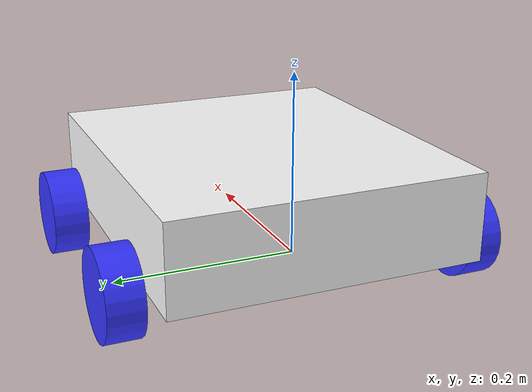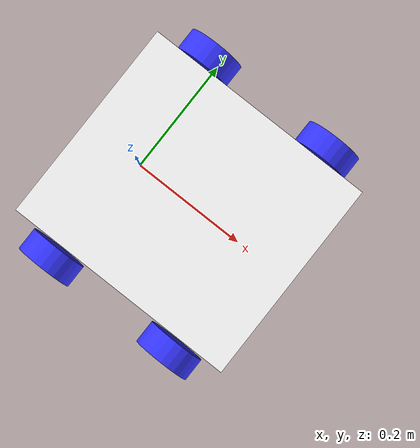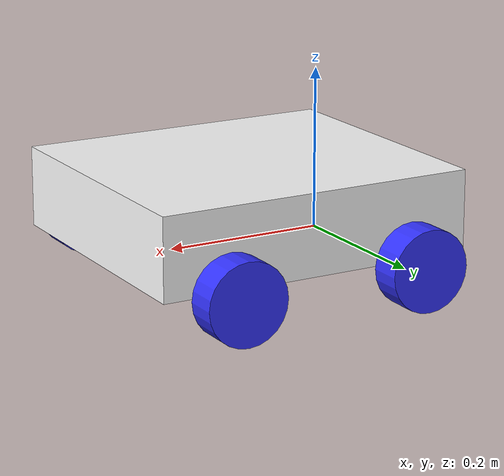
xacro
<?xml version="1.0"?>
<robot xmlns:xacro="http://www.ros.org/wiki/xacro" >

    <xacro:include filename="inertial_macros.xacro"/>

    <material name="white">
        <color rgba="1 1 1 1" />
    </material>

    <material name="orange">
        <color rgba="1 0.3 0.1 1"/>
    </material>

    <material name="blue">
        <color rgba="0.2 0.2 1 1"/>
    </material>

    <material name="black">
        <color rgba="0 0 0 1"/>
    </material>

    <material name="red">
        <color rgba="1 0 0 1"/>
    </material>

    <!-- BASE LINK -->

    <link name="base_link">

    </link>

    <!-- BASE_FOOTPRINT LINK -->

    <joint name="base_footprint_joint" type="fixed">
        <parent link="base_link"/>
        <child link="base_footprint"/>
        <origin xyz="0 0 0" rpy="0 0 0"/>
    </joint>

    <link name="base_footprint">
    </link>

    <!-- CHASSIS LINK -->

    <joint name="chassis_joint" type="fixed">
        <parent link="base_link"/>
        <child link="chassis"/>
        <origin xyz="-0.1 0 0"/>
    </joint>

    <link name="chassis">
        <visual>
            <origin xyz="0.2 0 0.05"/>
            <geometry>
                <box size="0.4 0.35 0.1"/>
            </geometry>
            <material name="white"/>
        </visual>
        <collision>
            <origin xyz="0.2 0 1"/>
            <geometry>
                <box size="0.4 0.35 0.1"/>
            </geometry>
        </collision>
        <xacro:inertial_box mass="1" x="0.4" y="0.35" z="0.1">
            <origin xyz="0.4 0 0.05" rpy="0 0 0"/>
        </xacro:inertial_box>
    </link>

    <gazebo reference="chassis">
        <material>Gazebo/White</material>
    </gazebo>

    <!-- LEFT WHEEL LINK -->

    <joint name="left_wheel_joint" type="continuous">
        <parent link="base_link"/>
        <child link="left_wheel"/>
        <origin xyz="-0.02 0.20416 0" rpy="-${pi/2} 0 0" />
        <axis xyz="0 0 1"/>
    </joint>

    <link name="left_wheel">
        <visual>
            <geometry>
                <cylinder radius="0.05" length="0.04"/>
            </geometry>
            <material name="blue"/>
        </visual>
        <collision>
            <geometry>
                <cylinder radius="0.05" length="0.04"/>
            </geometry>
        </collision>
        <xacro:inertial_cylinder mass="0.5" length="0.04" radius="0.05">
            <origin xyz="0 0 0" rpy="0 0 0"/>
        </xacro:inertial_cylinder>
    </link>

    <gazebo reference="left_wheel">
        <material>Gazebo/Blue</material>
    </gazebo>

    <!-- LEFT f WHEEL LINK -->

    <joint name="leftf_wheel_joint" type="fixed">
        <parent link="base_link"/>
        <child link="leftf_wheel"/>
        <origin xyz="0.22 0.20416 0" rpy="-${pi/2} 0 0" />
        <axis xyz="0 0 1"/>
    </joint>

    <link name="leftf_wheel">
        <visual>
            <geometry>
                <cylinder radius="0.05" length="0.04"/>
            </geometry>
            <material name="blue"/>gazebo_control.
        </visual>
        <collision>
            <geometry>
                <cylinder radius="0.05" length="0.04"/>
            </geometry>
        </collision>
        <xacro:inertial_cylinder mass="0.5" length="0.04" radius="0.05">
            <origin xyz="0 0 0" rpy="0 0 0"/>
        </xacro:inertial_cylinder>
    </link>

    <gazebo reference="leftf_wheel">
        <material>Gazebo/Blue</material>
        <mu1 value="0.001"/>
        <mu2 value="0.001"/>
    </gazebo>

    <!-- RIGHT WHEEL LINK -->

    <joint name="right_wheel_joint" type="continuous">
        <parent link="base_link"/>
        <child link="right_wheel"/>
        <origin xyz="-0.02 -0.20416 0" rpy="${pi/2} 0 0" />
        <axis xyz="0 0 -1"/>
    </joint>

    <link name="right_wheel">
        <visual>
            <geometry>
                <cylinder radius="0.05" length="0.04"/>
            </geometry>
            <material name="blue"/>
        </visual>
        <collision>
            <geometry>
                <cylinder radius="0.05" length="0.04"/>
            </geometry>
        </collision>
        <xacro:inertial_cylinder mass="0.5" length="0.04" radius="0.05">
            <origin xyz="0 0 0" rpy="0 0 0"/>
        </xacro:inertial_cylinder>
    </link>

    <gazebo reference="right_wheel">
        <material>Gazebo/Blue</material>
    </gazebo>

     <!-- RIGHT f WHEEL LINK -->

    <joint name="rightf_wheel_joint" type="fixed">
        <parent link="base_link"/>
        <child link="rightf_wheel"/>
        <origin xyz="0.22 -0.20416 0" rpy="${pi/2} 0 0" />
        <axis xyz="0 0 -1"/>
    </joint>

    <link name="rightf_wheel">
        <visual>
            <geometry>
                <cylinder radius="0.05" length="0.04"/>
            </geometry>
            <material name="blue"/>
        </visual>
        <collision>
            <geometry>
                <cylinder radius="0.05" length="0.04"/>
            </geometry>
        </collision>
        <xacro:inertial_cylinder mass="0.5" length="0.04" radius="0.05">
            <origin xyz="0 0 0" rpy="0 0 0"/>
        </xacro:inertial_cylinder>
    </link>

    <gazebo reference="rightf_wheel">
        <material>Gazebo/Blue</material>
        <mu1 value="0.001"/>
        <mu2 value="0.001"/>
    </gazebo>

</robot>

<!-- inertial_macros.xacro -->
<robot xmlns:xacro="http://www.ros.org/wiki/xacro" >

    <!-- Specify some standard inertial calculations https://en.wikipedia.org/wiki/List_of_moments_of_inertia -->
    <!-- These make use of xacro's mathematical functionality -->

    <xacro:macro name="inertial_box" params="mass x y z *origin">
        <inertial>
            <xacro:insert_block name="origin"/>
            <mass value="${mass}" />
            <inertia ixx="${(1/12) * mass * (y*y+z*z)}" ixy="0.0" ixz="0.0"
                    iyy="${(1/12) * mass * (x*x+z*z)}" iyz="0.0"
                    izz="${(1/12) * mass * (x*x+y*y)}" />
        </inertial>
    </xacro:macro>

    <xacro:macro name="inertial_cylinder" params="mass length radius *origin">
        <inertial>
            <xacro:insert_block name="origin"/>
            <mass value="${mass}" />
            <inertia ixx="${(1/12) * mass * (3*radius*radius + length*length)}" ixy="0.0" ixz="0.0"
                    iyy="${(1/12) * mass * (3*radius*radius + length*length)}" iyz="0.0"
                    izz="${(1/2) * mass * (radius*radius)}" />
        </inertial>
    </xacro:macro>

</robot>
